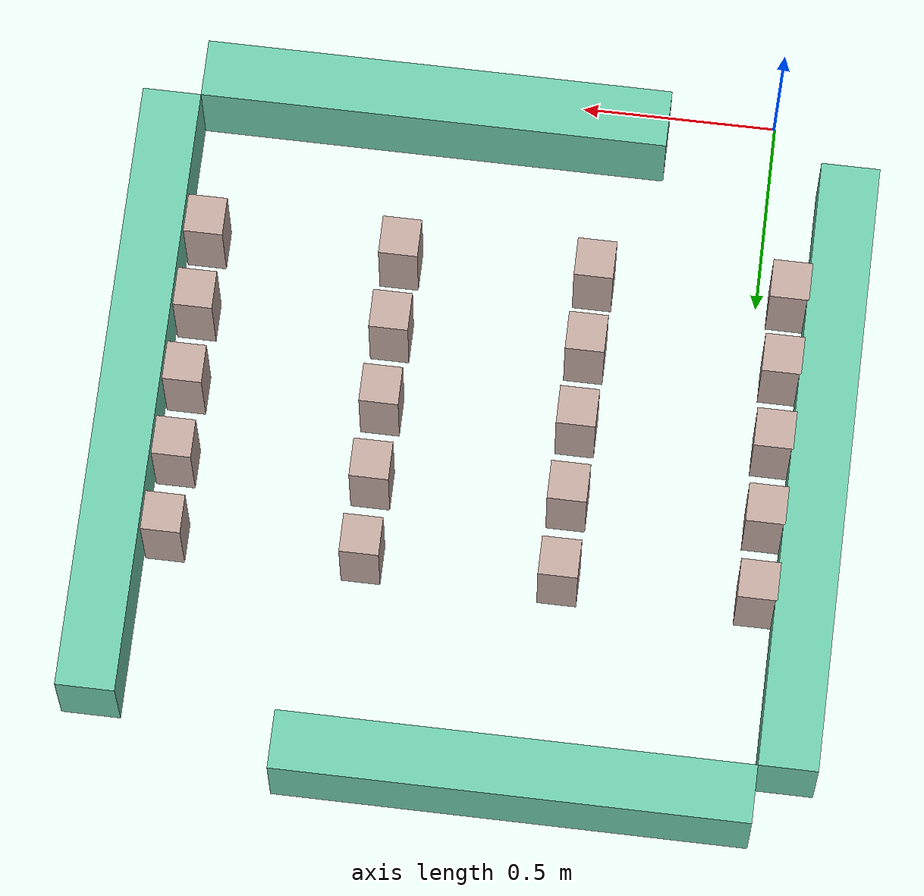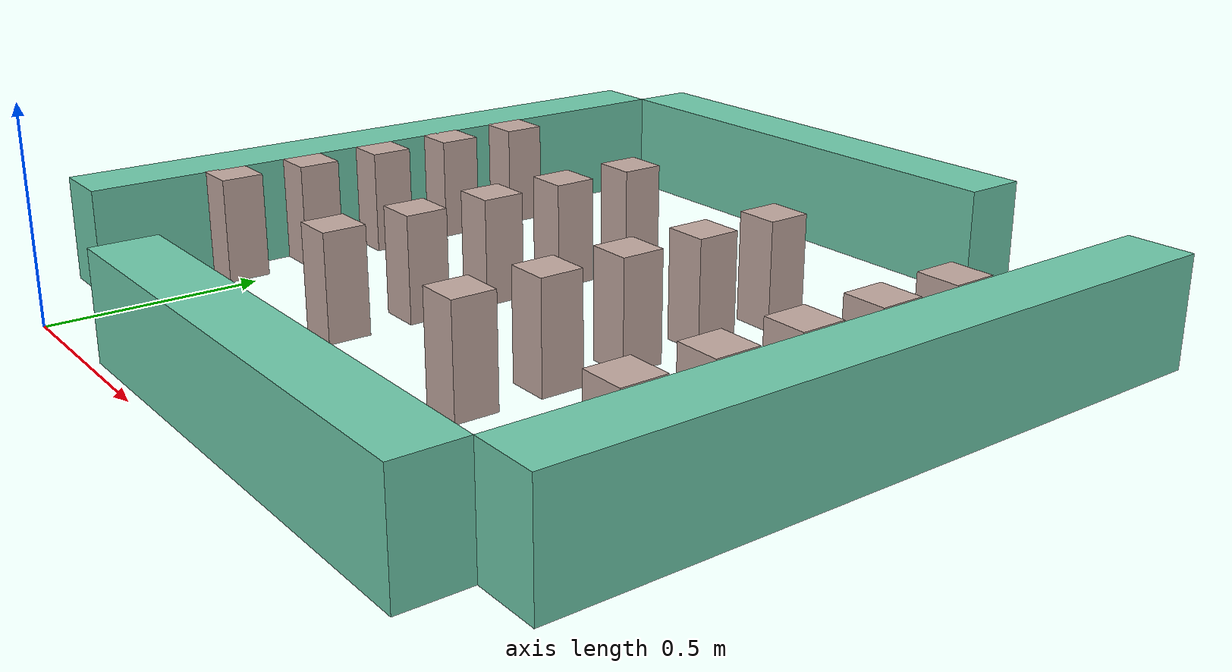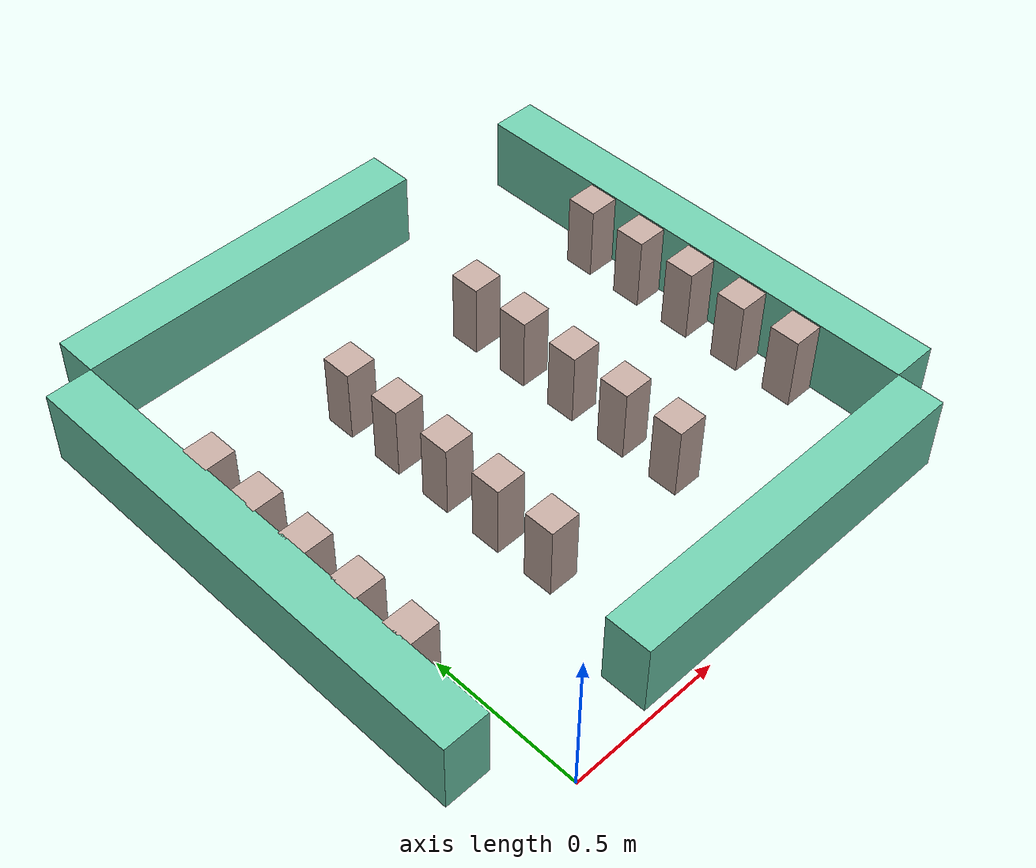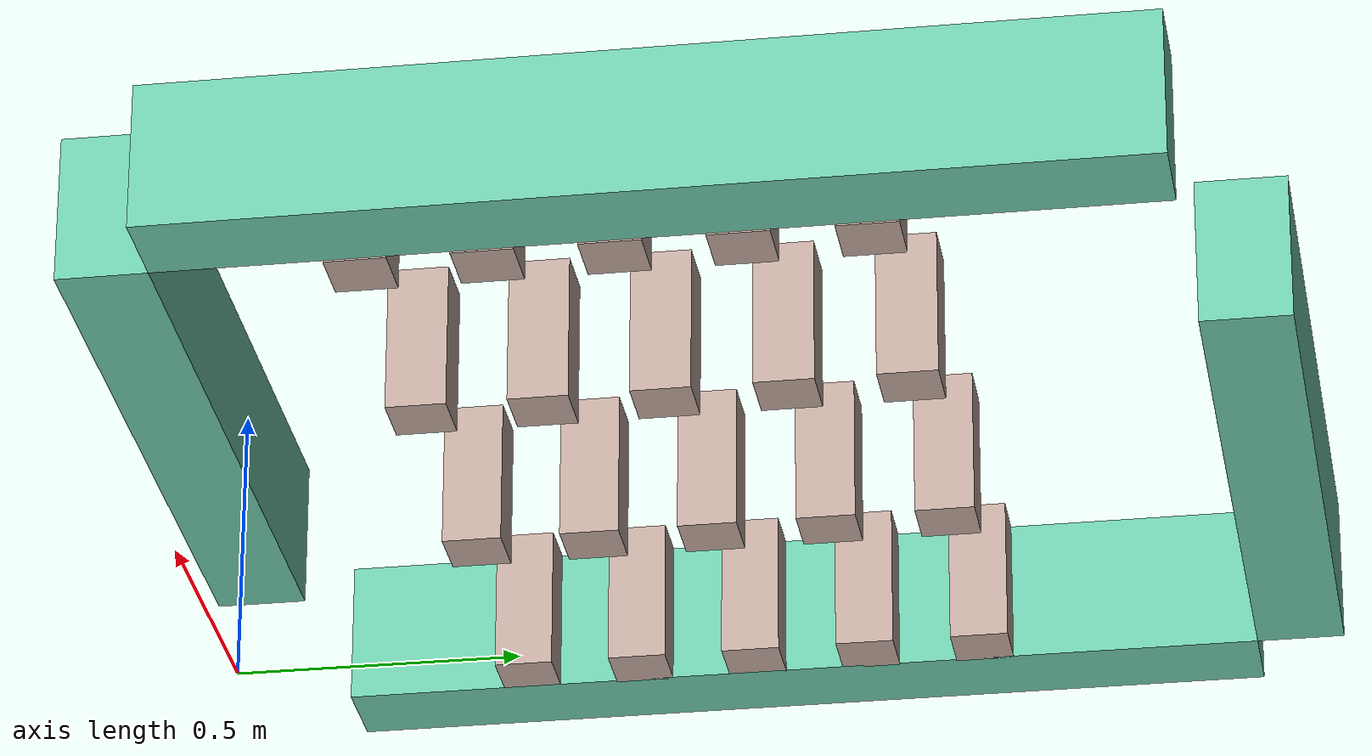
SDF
<?xml version='1.0'?>
<sdf version='1.6'>
  <model name='map_1'>
    <pose frame=''>0.675 0.975 0 0 -0 0</pose>
    <link name='Wall_100'>
      <collision name='Wall_100_Collision'>
        <geometry>
          <box>
            <size>0.1 0.1 0.25</size>
          </box>
        </geometry>
        <pose frame=''>0 0 0.125 0 -0 0</pose>
      </collision>
      <visual name='Wall_100_Visual'>
        <pose frame=''>0 0 0.125 0 -0 0</pose>
        <geometry>
          <box>
            <size>0.1 0.1 0.25</size>
          </box>
        </geometry>
        <material>
          <script>
            <uri>file://media/materials/scripts/gazebo.material</uri>
            <name>Gazebo/Grey</name>
          </script>
          <ambient>0.760784 0.662745 0.627451 1</ambient>
        </material>
      </visual>
      <pose frame=''>0.245 -0.475 0 0 -0 0</pose>
    </link>
    <link name='Wall_102'>
      <collision name='Wall_102_Collision'>
        <geometry>
          <box>
            <size>0.1 0.1 0.25</size>
          </box>
        </geometry>
        <pose frame=''>0 0 0.125 0 -0 0</pose>
      </collision>
      <visual name='Wall_102_Visual'>
        <pose frame=''>0 0 0.125 0 -0 0</pose>
        <geometry>
          <box>
            <size>0.1 0.1 0.25</size>
          </box>
        </geometry>
        <material>
          <script>
            <uri>file://media/materials/scripts/gazebo.material</uri>
            <name>Gazebo/Grey</name>
          </script>
          <ambient>0.760784 0.662745 0.627451 1</ambient>
        </material>
      </visual>
      <pose frame=''>0.745 0.325 0 0 -0 0</pose>
    </link>
    <link name='Wall_110'>
      <collision name='Wall_110_Collision'>
        <geometry>
          <box>
            <size>0.1 0.1 0.25</size>
          </box>
        </geometry>
        <pose frame=''>0 0 0.125 0 -0 0</pose>
      </collision>
      <visual name='Wall_110_Visual'>
        <pose frame=''>0 0 0.125 0 -0 0</pose>
        <geometry>
          <box>
            <size>0.1 0.1 0.25</size>
          </box>
        </geometry>
        <material>
          <script>
            <uri>file://media/materials/scripts/gazebo.material</uri>
            <name>Gazebo/Grey</name>
          </script>
          <ambient>0.760784 0.662745 0.627451 1</ambient>
        </material>
      </visual>
      <pose frame=''>0.745 0.125 0 0 -0 0</pose>
    </link>
    <link name='Wall_112'>
      <collision name='Wall_112_Collision'>
        <geometry>
          <box>
            <size>0.1 0.1 0.25</size>
          </box>
        </geometry>
        <pose frame=''>0 0 0.125 0 -0 0</pose>
      </collision>
      <visual name='Wall_112_Visual'>
        <pose frame=''>0 0 0.125 0 -0 0</pose>
        <geometry>
          <box>
            <size>0.1 0.1 0.25</size>
          </box>
        </geometry>
        <material>
          <script>
            <uri>file://media/materials/scripts/gazebo.material</uri>
            <name>Gazebo/Grey</name>
          </script>
          <ambient>0.760784 0.662745 0.627451 1</ambient>
        </material>
      </visual>
      <pose frame=''>0.745 -0.075 0 0 -0 0</pose>
    </link>
    <link name='Wall_114'>
      <collision name='Wall_114_Collision'>
        <geometry>
          <box>
            <size>0.1 0.1 0.25</size>
          </box>
        </geometry>
        <pose frame=''>0 0 0.125 0 -0 0</pose>
      </collision>
      <visual name='Wall_114_Visual'>
        <pose frame=''>0 0 0.125 0 -0 0</pose>
        <geometry>
          <box>
            <size>0.1 0.1 0.25</size>
          </box>
        </geometry>
        <material>
          <script>
            <uri>file://media/materials/scripts/gazebo.material</uri>
            <name>Gazebo/Grey</name>
          </script>
          <ambient>0.760784 0.662745 0.627451 1</ambient>
        </material>
      </visual>
      <pose frame=''>0.745 -0.275 0 0 -0 0</pose>
    </link>
    <link name='Wall_118'>
      <collision name='Wall_118_Collision'>
        <geometry>
          <box>
            <size>0.1 0.1 0.25</size>
          </box>
        </geometry>
        <pose frame=''>0 0 0.125 0 -0 0</pose>
      </collision>
      <visual name='Wall_118_Visual'>
        <pose frame=''>0 0 0.125 0 -0 0</pose>
        <geometry>
          <box>
            <size>0.1 0.1 0.25</size>
          </box>
        </geometry>
        <material>
          <script>
            <uri>file://media/materials/scripts/gazebo.material</uri>
            <name>Gazebo/Grey</name>
          </script>
          <ambient>0.760784 0.662745 0.627451 1</ambient>
        </material>
      </visual>
      <pose frame=''>0.745 -0.475 0 0 -0 0</pose>
    </link>
    <link name='Wall_45'>
      <collision name='Wall_45_Collision'>
        <geometry>
          <box>
            <size>1.6 0.15 0.25</size>
          </box>
        </geometry>
        <pose frame=''>0 0 0.125 0 -0 0</pose>
      </collision>
      <visual name='Wall_45_Visual'>
        <pose frame=''>0 0 0.125 0 -0 0</pose>
        <geometry>
          <box>
            <size>1.6 0.15 0.25</size>
          </box>
        </geometry>
        <material>
          <script>
            <uri>file://media/materials/scripts/gazebo.material</uri>
            <name>Gazebo/Grey</name>
          </script>
          <ambient>0.435294 0.796078 0.67451 1</ambient>
        </material>
      </visual>
      <pose frame=''>-0.875 0 0 0 -0 1.5708</pose>
    </link>
    <link name='Wall_47'>
      <collision name='Wall_47_Collision'>
        <geometry>
          <box>
            <size>1.6 0.15 0.25</size>
          </box>
        </geometry>
        <pose frame=''>0 0 0.125 0 -0 0</pose>
      </collision>
      <visual name='Wall_47_Visual'>
        <pose frame=''>0 0 0.125 0 -0 0</pose>
        <geometry>
          <box>
            <size>1.6 0.15 0.25</size>
          </box>
        </geometry>
        <material>
          <script>
            <uri>file://media/materials/scripts/gazebo.material</uri>
            <name>Gazebo/Grey</name>
          </script>
          <ambient>0.435294 0.796078 0.67451 1</ambient>
        </material>
      </visual>
      <pose frame=''>0.875 0 0 0 -0 1.5708</pose>
    </link>
    <link name='Wall_49'>
      <collision name='Wall_49_Collision'>
        <geometry>
          <box>
            <size>1.2 0.15 0.25</size>
          </box>
        </geometry>
        <pose frame=''>0 0 0.125 0 -0 0</pose>
      </collision>
      <visual name='Wall_49_Visual'>
        <pose frame=''>0 0 0.125 0 -0 0</pose>
        <geometry>
          <box>
            <size>1.2 0.15 0.25</size>
          </box>
        </geometry>
        <material>
          <script>
            <uri>file://media/materials/scripts/gazebo.material</uri>
            <name>Gazebo/Grey</name>
          </script>
          <ambient>0.435294 0.796078 0.67451 1</ambient>
        </material>
      </visual>
      <pose frame=''>-0.2 0.875 0 0 -0 0</pose>
    </link>
    <link name='Wall_53'>
      <collision name='Wall_53_Collision'>
        <geometry>
          <box>
            <size>1.2 0.15 0.25</size>
          </box>
        </geometry>
        <pose frame=''>0 0 0.125 0 -0 0</pose>
      </collision>
      <visual name='Wall_53_Visual'>
        <pose frame=''>0 0 0.125 0 -0 0</pose>
        <geometry>
          <box>
            <size>1.2 0.15 0.25</size>
          </box>
        </geometry>
        <material>
          <script>
            <uri>file://media/materials/scripts/gazebo.material</uri>
            <name>Gazebo/Grey</name>
          </script>
          <ambient>0.435294 0.796078 0.67451 1</ambient>
        </material>
      </visual>
      <pose frame=''>0.2 -0.875 0 0 -0 0</pose>
    </link>
    <link name='Wall_55'>
      <collision name='Wall_55_Collision'>
        <geometry>
          <box>
            <size>0.1 0.1 0.25</size>
          </box>
        </geometry>
        <pose frame=''>0 0 0.125 0 -0 0</pose>
      </collision>
      <visual name='Wall_55_Visual'>
        <pose frame=''>0 0 0.125 0 -0 0</pose>
        <geometry>
          <box>
            <size>0.1 0.1 0.25</size>
          </box>
        </geometry>
        <material>
          <script>
            <uri>file://media/materials/scripts/gazebo.material</uri>
            <name>Gazebo/Grey</name>
          </script>
          <ambient>0.760784 0.662745 0.627451 1</ambient>
        </material>
      </visual>
      <pose frame=''>-0.755 0.325 0 0 -0 0</pose>
    </link>
    <link name='Wall_58'>
      <collision name='Wall_58_Collision'>
        <geometry>
          <box>
            <size>0.1 0.1 0.25</size>
          </box>
        </geometry>
        <pose frame=''>0 0 0.125 0 -0 0</pose>
      </collision>
      <visual name='Wall_58_Visual'>
        <pose frame=''>0 0 0.125 0 -0 0</pose>
        <geometry>
          <box>
            <size>0.1 0.1 0.25</size>
          </box>
        </geometry>
        <material>
          <script>
            <uri>file://media/materials/scripts/gazebo.material</uri>
            <name>Gazebo/Grey</name>
          </script>
          <ambient>0.760784 0.662745 0.627451 1</ambient>
        </material>
      </visual>
      <pose frame=''>-0.755 0.125 0 0 -0 0</pose>
    </link>
    <link name='Wall_60'>
      <collision name='Wall_60_Collision'>
        <geometry>
          <box>
            <size>0.1 0.1 0.25</size>
          </box>
        </geometry>
        <pose frame=''>0 0 0.125 0 -0 0</pose>
      </collision>
      <visual name='Wall_60_Visual'>
        <pose frame=''>0 0 0.125 0 -0 0</pose>
        <geometry>
          <box>
            <size>0.1 0.1 0.25</size>
          </box>
        </geometry>
        <material>
          <script>
            <uri>file://media/materials/scripts/gazebo.material</uri>
            <name>Gazebo/Grey</name>
          </script>
          <ambient>0.760784 0.662745 0.627451 1</ambient>
        </material>
      </visual>
      <pose frame=''>-0.755 -0.075 0 0 -0 0</pose>
    </link>
    <link name='Wall_62'>
      <collision name='Wall_62_Collision'>
        <geometry>
          <box>
            <size>0.1 0.1 0.25</size>
          </box>
        </geometry>
        <pose frame=''>0 0 0.125 0 -0 0</pose>
      </collision>
      <visual name='Wall_62_Visual'>
        <pose frame=''>0 0 0.125 0 -0 0</pose>
        <geometry>
          <box>
            <size>0.1 0.1 0.25</size>
          </box>
        </geometry>
        <material>
          <script>
            <uri>file://media/materials/scripts/gazebo.material</uri>
            <name>Gazebo/Grey</name>
          </script>
          <ambient>0.760784 0.662745 0.627451 1</ambient>
        </material>
      </visual>
      <pose frame=''>-0.755 -0.275 0 0 -0 0</pose>
    </link>
    <link name='Wall_67'>
      <collision name='Wall_67_Collision'>
        <geometry>
          <box>
            <size>0.1 0.1 0.25</size>
          </box>
        </geometry>
        <pose frame=''>0 0 0.125 0 -0 0</pose>
      </collision>
      <visual name='Wall_67_Visual'>
        <pose frame=''>0 0 0.125 0 -0 0</pose>
        <geometry>
          <box>
            <size>0.1 0.1 0.25</size>
          </box>
        </geometry>
        <material>
          <script>
            <uri>file://media/materials/scripts/gazebo.material</uri>
            <name>Gazebo/Grey</name>
          </script>
          <ambient>0.760784 0.662745 0.627451 1</ambient>
        </material>
      </visual>
      <pose frame=''>-0.755 -0.475 0 0 -0 0</pose>
    </link>
    <link name='Wall_70'>
      <collision name='Wall_70_Collision'>
        <geometry>
          <box>
            <size>0.1 0.1 0.25</size>
          </box>
        </geometry>
        <pose frame=''>0 0 0.125 0 -0 0</pose>
      </collision>
      <visual name='Wall_70_Visual'>
        <pose frame=''>0 0 0.125 0 -0 0</pose>
        <geometry>
          <box>
            <size>0.1 0.1 0.25</size>
          </box>
        </geometry>
        <material>
          <script>
            <uri>file://media/materials/scripts/gazebo.material</uri>
            <name>Gazebo/Grey</name>
          </script>
          <ambient>0.760784 0.662745 0.627451 1</ambient>
        </material>
      </visual>
      <pose frame=''>-0.255 0.325 0 0 -0 0</pose>
    </link>
    <link name='Wall_72'>
      <collision name='Wall_72_Collision'>
        <geometry>
          <box>
            <size>0.1 0.1 0.25</size>
          </box>
        </geometry>
        <pose frame=''>0 0 0.125 0 -0 0</pose>
      </collision>
      <visual name='Wall_72_Visual'>
        <pose frame=''>0 0 0.125 0 -0 0</pose>
        <geometry>
          <box>
            <size>0.1 0.1 0.25</size>
          </box>
        </geometry>
        <material>
          <script>
            <uri>file://media/materials/scripts/gazebo.material</uri>
            <name>Gazebo/Grey</name>
          </script>
          <ambient>0.760784 0.662745 0.627451 1</ambient>
        </material>
      </visual>
      <pose frame=''>-0.255 0.125 0 0 -0 0</pose>
    </link>
    <link name='Wall_75'>
      <collision name='Wall_75_Collision'>
        <geometry>
          <box>
            <size>0.1 0.1 0.25</size>
          </box>
        </geometry>
        <pose frame=''>0 0 0.125 0 -0 0</pose>
      </collision>
      <visual name='Wall_75_Visual'>
        <pose frame=''>0 0 0.125 0 -0 0</pose>
        <geometry>
          <box>
            <size>0.1 0.1 0.25</size>
          </box>
        </geometry>
        <material>
          <script>
            <uri>file://media/materials/scripts/gazebo.material</uri>
            <name>Gazebo/Grey</name>
          </script>
          <ambient>0.760784 0.662745 0.627451 1</ambient>
        </material>
      </visual>
      <pose frame=''>-0.255 -0.075 0 0 -0 0</pose>
    </link>
    <link name='Wall_77'>
      <collision name='Wall_77_Collision'>
        <geometry>
          <box>
            <size>0.1 0.1 0.25</size>
          </box>
        </geometry>
        <pose frame=''>0 0 0.125 0 -0 0</pose>
      </collision>
      <visual name='Wall_77_Visual'>
        <pose frame=''>0 0 0.125 0 -0 0</pose>
        <geometry>
          <box>
            <size>0.1 0.1 0.25</size>
          </box>
        </geometry>
        <material>
          <script>
            <uri>file://media/materials/scripts/gazebo.material</uri>
            <name>Gazebo/Grey</name>
          </script>
          <ambient>0.760784 0.662745 0.627451 1</ambient>
        </material>
      </visual>
      <pose frame=''>-0.255 -0.275 0 0 -0 0</pose>
    </link>
    <link name='Wall_85'>
      <collision name='Wall_85_Collision'>
        <geometry>
          <box>
            <size>0.1 0.1 0.25</size>
          </box>
        </geometry>
        <pose frame=''>0 0 0.125 0 -0 0</pose>
      </collision>
      <visual name='Wall_85_Visual'>
        <pose frame=''>0 0 0.125 0 -0 0</pose>
        <geometry>
          <box>
            <size>0.1 0.1 0.25</size>
          </box>
        </geometry>
        <material>
          <script>
            <uri>file://media/materials/scripts/gazebo.material</uri>
            <name>Gazebo/Grey</name>
          </script>
          <ambient>0.760784 0.662745 0.627451 1</ambient>
        </material>
      </visual>
      <pose frame=''>-0.255 -0.475 0 0 -0 0</pose>
    </link>
    <link name='Wall_88'>
      <collision name='Wall_88_Collision'>
        <geometry>
          <box>
            <size>0.1 0.1 0.25</size>
          </box>
        </geometry>
        <pose frame=''>0 0 0.125 0 -0 0</pose>
      </collision>
      <visual name='Wall_88_Visual'>
        <pose frame=''>0 0 0.125 0 -0 0</pose>
        <geometry>
          <box>
            <size>0.1 0.1 0.25</size>
          </box>
        </geometry>
        <material>
          <script>
            <uri>file://media/materials/scripts/gazebo.material</uri>
            <name>Gazebo/Grey</name>
          </script>
          <ambient>0.760784 0.662745 0.627451 1</ambient>
        </material>
      </visual>
      <pose frame=''>0.245 0.325 0 0 -0 0</pose>
    </link>
    <link name='Wall_93'>
      <collision name='Wall_93_Collision'>
        <geometry>
          <box>
            <size>0.1 0.1 0.25</size>
          </box>
        </geometry>
        <pose frame=''>0 0 0.125 0 -0 0</pose>
      </collision>
      <visual name='Wall_93_Visual'>
        <pose frame=''>0 0 0.125 0 -0 0</pose>
        <geometry>
          <box>
            <size>0.1 0.1 0.25</size>
          </box>
        </geometry>
        <material>
          <script>
            <uri>file://media/materials/scripts/gazebo.material</uri>
            <name>Gazebo/Grey</name>
          </script>
          <ambient>0.760784 0.662745 0.627451 1</ambient>
        </material>
      </visual>
      <pose frame=''>0.245 0.125 0 0 -0 0</pose>
    </link>
    <link name='Wall_96'>
      <collision name='Wall_96_Collision'>
        <geometry>
          <box>
            <size>0.1 0.1 0.25</size>
          </box>
        </geometry>
        <pose frame=''>0 0 0.125 0 -0 0</pose>
      </collision>
      <visual name='Wall_96_Visual'>
        <pose frame=''>0 0 0.125 0 -0 0</pose>
        <geometry>
          <box>
            <size>0.1 0.1 0.25</size>
          </box>
        </geometry>
        <material>
          <script>
            <uri>file://media/materials/scripts/gazebo.material</uri>
            <name>Gazebo/Grey</name>
          </script>
          <ambient>0.760784 0.662745 0.627451 1</ambient>
        </material>
      </visual>
      <pose frame=''>0.245 -0.075 0 0 -0 0</pose>
    </link>
    <link name='Wall_98'>
      <collision name='Wall_98_Collision'>
        <geometry>
          <box>
            <size>0.1 0.1 0.25</size>
          </box>
        </geometry>
        <pose frame=''>0 0 0.125 0 -0 0</pose>
      </collision>
      <visual name='Wall_98_Visual'>
        <pose frame=''>0 0 0.125 0 -0 0</pose>
        <geometry>
          <box>
            <size>0.1 0.1 0.25</size>
          </box>
        </geometry>
        <material>
          <script>
            <uri>file://media/materials/scripts/gazebo.material</uri>
            <name>Gazebo/Grey</name>
          </script>
          <ambient>0.760784 0.662745 0.627451 1</ambient>
        </material>
      </visual>
      <pose frame=''>0.245 -0.275 0 0 -0 0</pose>
    </link>
    <static>1</static>
  </model>
</sdf>
